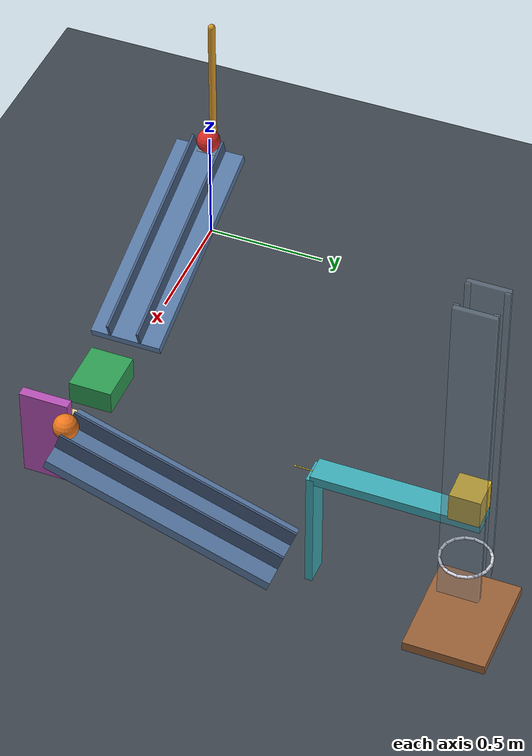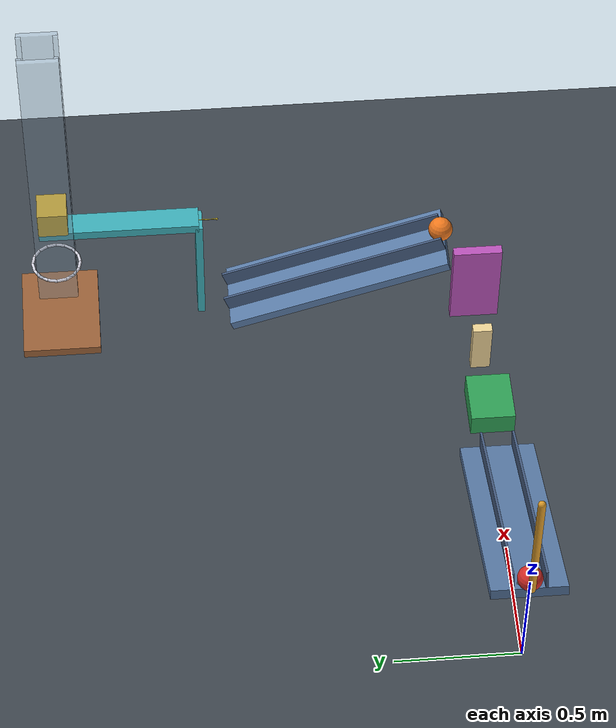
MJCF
<mujoco model="revised_passive_chain_ring_diameter_relaxed">
  <compiler angle="degree" autolimits="true"/>
  <option timestep="0.002" gravity="0 0 -9.81" integrator="implicitfast" solver="Newton" iterations="100" tolerance="1e-9"/>
  <size nconmax="500" njmax="2000"/>

  <!-- Explicit deviation: ring1 has 0.18 m clear diameter, not the requested 0.16 m. -->
  <!-- All bodies start at rest. There are no powered actuators or prescribed motions. -->
  <!-- MuJoCo does not expose an exact restitution coefficient. -->
  <!-- solref damping ratio 0.6901 approximates restitution 0.05 for a linear impact. -->
  <!-- Sliding friction is 0.68; rolling friction is included to help balls settle. -->
  <!-- This candidate has not been simulation-validated. -->

  <visual>
    <headlight ambient="0.35 0.35 0.35" diffuse="0.65 0.65 0.65" specular="0.2 0.2 0.2"/>
    <map znear="0.01" zfar="30"/>
  </visual>

  <worldbody>
    <light name="main_light" pos="0 -2 5" dir="0 0 -1" directional="true"/>
    <camera name="overview" pos="3.8 -4.8 3.1" xyaxes="0.85 0.53 0 -0.24 0.39 0.89"/>

    <geom name="floor" type="plane" size="8 8 0.1" pos="0 0 0" friction="0.68 0.005 0.01" condim="6" solref="0.006 0.6901" solimp="0.95 0.99 0.001" rgba="0.24 0.27 0.30 1"/>

    <body name="pendulum1" pos="-0.034 0 1.056565">
      <joint name="pendulum1_hinge" type="hinge" axis="0 1 0" range="-100 65" damping="0.04"/>
      <geom name="pendulum1_rod" type="capsule" fromto="0 0 0 0 0 -0.55" size="0.015" mass="0.40" friction="0.68 0.005 0.01" condim="6" solref="0.006 0.6901" solimp="0.95 0.99 0.001" rgba="0.85 0.60 0.16 1"/>
    </body>

    <body name="ball1" pos="0.0162784 0 0.506565">
      <freejoint name="ball1_free"/>
      <geom name="ball1_sphere" type="sphere" size="0.05" mass="0.20" friction="0.68 0.005 0.01" condim="6" solref="0.006 0.6901" solimp="0.95 0.99 0.001" rgba="0.85 0.18 0.16 1"/>
    </body>

    <!-- Ramp top length 0.95 m, width 0.30 m, slope 19 degrees, low edge z = 0.15. -->
    <body name="ramp1" pos="0.442609 0 0.285734" quat="0.986285602 0 0.165047606 0">
      <geom name="ramp1_surface" type="box" size="0.475 0.15 0.02" density="0" friction="0.68 0.005 0.01" condim="6" solref="0.006 0.6901" solimp="0.95 0.99 0.001" rgba="0.35 0.48 0.65 1"/>
      <geom name="ramp1_rail_left" type="box" pos="0 -0.065 0.055" size="0.475 0.005 0.035" density="0" friction="0.68 0.005 0.01" condim="6" solref="0.006 0.6901" solimp="0.95 0.99 0.001" rgba="0.27 0.36 0.50 1"/>
      <geom name="ramp1_rail_right" type="box" pos="0 0.065 0.055" size="0.475 0.005 0.035" density="0" friction="0.68 0.005 0.01" condim="6" solref="0.006 0.6901" solimp="0.95 0.99 0.001" rgba="0.27 0.36 0.50 1"/>
      <geom name="ramp1_release_lip" type="cylinder" pos="-0.4437 0 0.026" quat="0.707106781 0.707106781 0 0" size="0.004 0.045" density="0" friction="0.68 0.005 0.01" condim="6" solref="0.006 0.6901" solimp="0.95 0.99 0.001" rgba="0.65 0.70 0.75 1"/>
    </body>

    <!-- Ramp1 low edge x = 0.898242; initial cart left face x = 1.018242. -->
    <body name="cart1" pos="1.128242 0 0.13">
      <joint name="cart1_slide" type="slide" axis="1 0 0" range="0 0.40" damping="0.20"/>
      <geom name="cart1_box" type="box" size="0.11 0.09 0.05" mass="0.50" friction="0.68 0.005 0.01" condim="6" solref="0.006 0.6901" solimp="0.95 0.99 0.001" rgba="0.18 0.62 0.33 1"/>
    </body>

    <body name="domino1" pos="1.438242 0 0.12">
      <freejoint name="domino1_free"/>
      <geom name="domino1_box" type="box" size="0.02 0.04 0.12" mass="0.25" friction="0.68 0.005 0.01" condim="6" solref="0.006 0.6901" solimp="0.95 0.99 0.001" rgba="0.92 0.82 0.58 1"/>
    </body>

    <!-- Initial flap near face is 0.18 m beyond the domino's initial center. -->
    <body name="flap1" pos="1.638242 0.01 0.10">
      <joint name="flap1_hinge" type="hinge" axis="0 1 0" range="0 65" damping="0.04" stiffness="0.01" springref="-2" solreflimit="0.004 1" solimplimit="0.99 0.999 0.0001"/>
      <geom name="flap1_panel" type="box" pos="0 0 0.20" size="0.02 0.10 0.20" mass="0.30" friction="0.68 0.005 0.01" condim="6" solref="0.006 0.6901" solimp="0.95 0.99 0.001" rgba="0.72 0.32 0.72 1"/>
    </body>

    <body name="ball2" pos="1.758242 0.1512784 0.506565">
      <freejoint name="ball2_free"/>
      <geom name="ball2_sphere" type="sphere" size="0.05" mass="0.20" friction="0.68 0.005 0.01" condim="6" solref="0.006 0.6901" solimp="0.95 0.99 0.001" rgba="0.95 0.48 0.12 1"/>
    </body>

    <!-- Ramp2 runs along +y, with top high edge y = 0.135 and low edge y = 1.033242. -->
    <body name="ramp2" pos="1.758242 0.577609 0.285734" quat="0.697408655 -0.116706246 0.116706246 0.697408655">
      <geom name="ramp2_surface" type="box" size="0.475 0.15 0.02" density="0" friction="0.68 0.005 0.01" condim="6" solref="0.006 0.6901" solimp="0.95 0.99 0.001" rgba="0.35 0.48 0.65 1"/>
      <geom name="ramp2_rail_left" type="box" pos="0 -0.065 0.055" size="0.475 0.005 0.035" density="0" friction="0.68 0.005 0.01" condim="6" solref="0.006 0.6901" solimp="0.95 0.99 0.001" rgba="0.27 0.36 0.50 1"/>
      <geom name="ramp2_rail_right" type="box" pos="0 0.065 0.055" size="0.475 0.005 0.035" density="0" friction="0.68 0.005 0.01" condim="6" solref="0.006 0.6901" solimp="0.95 0.99 0.001" rgba="0.27 0.36 0.50 1"/>
      <geom name="ramp2_release_lip" type="cylinder" pos="-0.4437 0 0.026" quat="0.707106781 0.707106781 0 0" size="0.004 0.045" density="0" friction="0.68 0.005 0.01" condim="6" solref="0.006 0.6901" solimp="0.95 0.99 0.001" rgba="0.65 0.70 0.75 1"/>
    </body>

    <!-- Elevated beam with a downward-reaching paddle attached to its left end. -->
    <!-- Paddle initial upstream face y = 1.133242 gives a 0.10 m ramp-exit gap. -->
    <!-- Beam and paddle masses sum to 0.55 kg. -->
    <body name="seesaw1" pos="1.758242 1.473242 0.65">
      <joint name="seesaw1_hinge" type="hinge" axis="1 0 0" range="0 40" damping="0.04" solreflimit="0.004 1" solimplimit="0.99 0.999 0.0001"/>
      <geom name="seesaw1_beam" type="box" size="0.05 0.325 0.02" mass="0.531" friction="0.68 0.005 0.01" condim="6" solref="0.006 0.6901" solimp="0.95 0.99 0.001" rgba="0.24 0.68 0.72 1"/>
      <geom name="seesaw1_left_striking_paddle" type="box" pos="0 -0.325 -0.265" size="0.05 0.015 0.265" mass="0.019" friction="0.68 0.005 0.01" condim="6" solref="0.006 0.6901" solimp="0.95 0.99 0.001" rgba="0.24 0.68 0.72 1"/>
      <site name="seesaw1_spring_attachment" pos="0 0.325 0" size="0.004" rgba="0.9 0.8 0.2 1"/>
    </body>

    <site name="seesaw1_spring_anchor" pos="1.758242 1.073242 0.65" size="0.004" rgba="0.9 0.8 0.2 1"/>

    <body name="block1" pos="1.758242 1.738242 0.73">
      <freejoint name="block1_free"/>
      <geom name="block1_cube" type="box" size="0.06 0.06 0.06" mass="0.35" friction="0.68 0.005 0.01" condim="6" solref="0.006 0.6901" solimp="0.95 0.99 0.001" rgba="0.90 0.72 0.12 1"/>
    </body>

    <!-- Guides extend from z = 0.30 to 1.70 and continue through the ring plane. -->
    <!-- Corner posts leave a central slot for the seesaw beam and paddle. -->
    <body name="block1_guides" pos="1.758242 1.738242 1.00">
      <geom name="block1_guides_left" type="box" pos="-0.071 0 0" size="0.01 0.08 0.70" density="0" friction="0.68 0.005 0.01" condim="6" solref="0.006 0.6901" solimp="0.95 0.99 0.001" rgba="0.55 0.65 0.75 0.35"/>
      <geom name="block1_guides_right" type="box" pos="0.071 0 0" size="0.01 0.08 0.70" density="0" friction="0.68 0.005 0.01" condim="6" solref="0.006 0.6901" solimp="0.95 0.99 0.001" rgba="0.55 0.65 0.75 0.35"/>
      <geom name="block1_guides_rear_left" type="box" pos="-0.057 -0.071 0" size="0.005 0.01 0.70" density="0" friction="0.68 0.005 0.01" condim="6" solref="0.006 0.6901" solimp="0.95 0.99 0.001" rgba="0.55 0.65 0.75 0.35"/>
      <geom name="block1_guides_rear_right" type="box" pos="0.057 -0.071 0" size="0.005 0.01 0.70" density="0" friction="0.68 0.005 0.01" condim="6" solref="0.006 0.6901" solimp="0.95 0.99 0.001" rgba="0.55 0.65 0.75 0.35"/>
      <geom name="block1_guides_front_left" type="box" pos="-0.057 0.071 0" size="0.005 0.01 0.70" density="0" friction="0.68 0.005 0.01" condim="6" solref="0.006 0.6901" solimp="0.95 0.99 0.001" rgba="0.55 0.65 0.75 0.35"/>
      <geom name="block1_guides_front_right" type="box" pos="0.057 0.071 0" size="0.005 0.01 0.70" density="0" friction="0.68 0.005 0.01" condim="6" solref="0.006 0.6901" solimp="0.95 0.99 0.001" rgba="0.55 0.65 0.75 0.35"/>
    </body>

    <!-- Revised ring: approximately 0.18 m inscribed clear diameter. -->
    <!-- Ring center remains 0.30 m directly below block1's initial center. -->
    <body name="ring1" pos="1.758242 1.738242 0.43">
      <geom name="ring1_segment_00" type="capsule" fromto="0.097881 0 0 0.090430 0.037457 0" size="0.006" density="0" friction="0.68 0.005 0.01" condim="6" solref="0.006 0.6901" solimp="0.95 0.99 0.001" rgba="0.85 0.85 0.90 1"/>
      <geom name="ring1_segment_01" type="capsule" fromto="0.090430 0.037457 0 0.069212 0.069212 0" size="0.006" density="0" friction="0.68 0.005 0.01" condim="6" solref="0.006 0.6901" solimp="0.95 0.99 0.001" rgba="0.85 0.85 0.90 1"/>
      <geom name="ring1_segment_02" type="capsule" fromto="0.069212 0.069212 0 0.037457 0.090430 0" size="0.006" density="0" friction="0.68 0.005 0.01" condim="6" solref="0.006 0.6901" solimp="0.95 0.99 0.001" rgba="0.85 0.85 0.90 1"/>
      <geom name="ring1_segment_03" type="capsule" fromto="0.037457 0.090430 0 0 0.097881 0" size="0.006" density="0" friction="0.68 0.005 0.01" condim="6" solref="0.006 0.6901" solimp="0.95 0.99 0.001" rgba="0.85 0.85 0.90 1"/>
      <geom name="ring1_segment_04" type="capsule" fromto="0 0.097881 0 -0.037457 0.090430 0" size="0.006" density="0" friction="0.68 0.005 0.01" condim="6" solref="0.006 0.6901" solimp="0.95 0.99 0.001" rgba="0.85 0.85 0.90 1"/>
      <geom name="ring1_segment_05" type="capsule" fromto="-0.037457 0.090430 0 -0.069212 0.069212 0" size="0.006" density="0" friction="0.68 0.005 0.01" condim="6" solref="0.006 0.6901" solimp="0.95 0.99 0.001" rgba="0.85 0.85 0.90 1"/>
      <geom name="ring1_segment_06" type="capsule" fromto="-0.069212 0.069212 0 -0.090430 0.037457 0" size="0.006" density="0" friction="0.68 0.005 0.01" condim="6" solref="0.006 0.6901" solimp="0.95 0.99 0.001" rgba="0.85 0.85 0.90 1"/>
      <geom name="ring1_segment_07" type="capsule" fromto="-0.090430 0.037457 0 -0.097881 0 0" size="0.006" density="0" friction="0.68 0.005 0.01" condim="6" solref="0.006 0.6901" solimp="0.95 0.99 0.001" rgba="0.85 0.85 0.90 1"/>
      <geom name="ring1_segment_08" type="capsule" fromto="-0.097881 0 0 -0.090430 -0.037457 0" size="0.006" density="0" friction="0.68 0.005 0.01" condim="6" solref="0.006 0.6901" solimp="0.95 0.99 0.001" rgba="0.85 0.85 0.90 1"/>
      <geom name="ring1_segment_09" type="capsule" fromto="-0.090430 -0.037457 0 -0.069212 -0.069212 0" size="0.006" density="0" friction="0.68 0.005 0.01" condim="6" solref="0.006 0.6901" solimp="0.95 0.99 0.001" rgba="0.85 0.85 0.90 1"/>
      <geom name="ring1_segment_10" type="capsule" fromto="-0.069212 -0.069212 0 -0.037457 -0.090430 0" size="0.006" density="0" friction="0.68 0.005 0.01" condim="6" solref="0.006 0.6901" solimp="0.95 0.99 0.001" rgba="0.85 0.85 0.90 1"/>
      <geom name="ring1_segment_11" type="capsule" fromto="-0.037457 -0.090430 0 0 -0.097881 0" size="0.006" density="0" friction="0.68 0.005 0.01" condim="6" solref="0.006 0.6901" solimp="0.95 0.99 0.001" rgba="0.85 0.85 0.90 1"/>
      <geom name="ring1_segment_12" type="capsule" fromto="0 -0.097881 0 0.037457 -0.090430 0" size="0.006" density="0" friction="0.68 0.005 0.01" condim="6" solref="0.006 0.6901" solimp="0.95 0.99 0.001" rgba="0.85 0.85 0.90 1"/>
      <geom name="ring1_segment_13" type="capsule" fromto="0.037457 -0.090430 0 0.069212 -0.069212 0" size="0.006" density="0" friction="0.68 0.005 0.01" condim="6" solref="0.006 0.6901" solimp="0.95 0.99 0.001" rgba="0.85 0.85 0.90 1"/>
      <geom name="ring1_segment_14" type="capsule" fromto="0.069212 -0.069212 0 0.090430 -0.037457 0" size="0.006" density="0" friction="0.68 0.005 0.01" condim="6" solref="0.006 0.6901" solimp="0.95 0.99 0.001" rgba="0.85 0.85 0.90 1"/>
      <geom name="ring1_segment_15" type="capsule" fromto="0.090430 -0.037457 0 0.097881 0 0" size="0.006" density="0" friction="0.68 0.005 0.01" condim="6" solref="0.006 0.6901" solimp="0.95 0.99 0.001" rgba="0.85 0.85 0.90 1"/>
    </body>

    <!-- Door top z = 0.12; upright block contact center z = 0.18. -->
    <!-- This is 0.25 m below the ring center. -->
    <body name="door1" pos="1.548242 1.738242 0.10">
      <joint name="door1_hinge" type="hinge" axis="0 1 0" range="-5 80" damping="0.04" stiffness="5" springref="-10.623"/>
      <geom name="door1_panel" type="box" pos="0.21 0 0" size="0.21 0.16 0.02" mass="0.45" friction="0.68 0.005 0.01" condim="6" solref="0.006 0.6901" solimp="0.95 0.99 0.001" rgba="0.60 0.38 0.22 1"/>
    </body>
  </worldbody>

  <tendon>
    <spatial name="seesaw1_overcenter_spring" stiffness="220" damping="0" springlength="0.12" width="0.002" rgba="0.9 0.8 0.2 1">
      <site site="seesaw1_spring_anchor"/>
      <site site="seesaw1_spring_attachment"/>
    </spatial>
  </tendon>

  <keyframe>
    <!-- Keyframe hinge positions are radians. Omitted qvel defaults to zero. -->
    <key name="start" qpos="0.959931089 0.0162784 0 0.506565 1 0 0 0 0 1.438242 0 0.12 1 0 0 0 0 1.758242 0.1512784 0.506565 1 0 0 0 0 1.758242 1.738242 0.73 1 0 0 0 0"/>
  </keyframe>
</mujoco>
